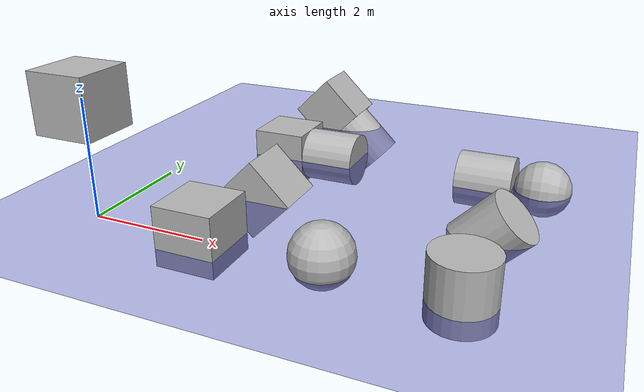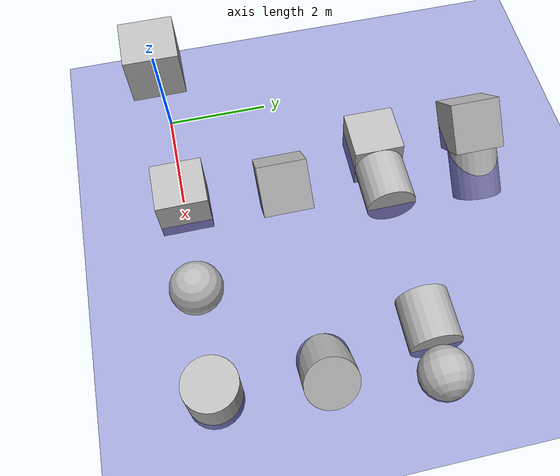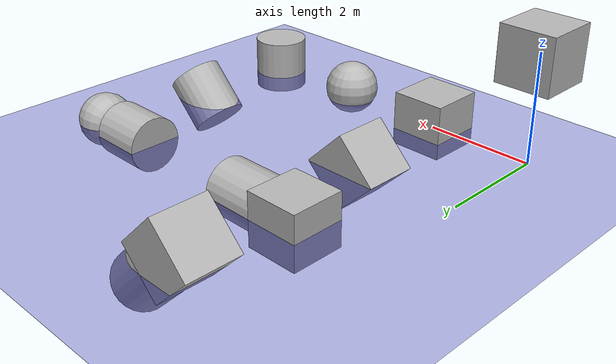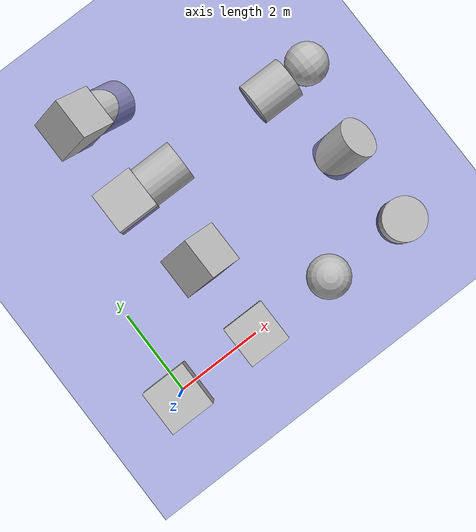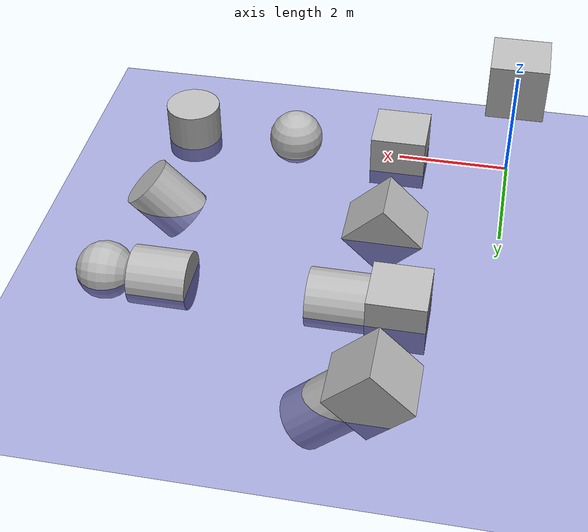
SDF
<?xml version="1.0" ?>
<!-- World containing buoyancy test models -->
<sdf version="1.6" xmlns:xacro="http://ros.org/wiki/xacro">
  <world name='buoyancy_test'>
    <gravity>0 0 0</gravity>
    <scene>
      <grid>false</grid>
      <origin_visual>false</origin_visual>
      <ambient>0.6 0.6 0.6 1</ambient>
      <background>0.8 0.8 0.8 1</background>
    </scene>

    <!-- A global light source -->
    <include>
      <uri>model://sun</uri>
    </include>

    <gui fullscreen='0'>
      <camera name='user_camera'>
        <pose frame=''>4.84693 -4.51466 1.77033 0 0.275643 2.35619</pose>
        <view_controller>orbit</view_controller>
      </camera>
    </gui>

    <!-- water level for visual reference at z = 0-->
    <model name="plane">
      <static>true</static>
      <pose>3 3 0 0 0 0</pose>
      <link name="link">
        <visual name="visual">
          <geometry>
            <plane>
              <normal>0 0 1</normal>
              <size>10 10</size>
            </plane>
          </geometry>
          <material>
            <ambient>0.0 0.0 0.6 1</ambient>
          </material>
        </visual>
      </link>
    </model>

    <!-- test_1: floating box -->
    <model name="1_box">
      <pose>0 0 2 0 0 0</pose>
      <static>true</static>
      <link name="link">
        <visual name="visual">
          <geometry>
            <box>
              <size>1 1 1</size>
            </box>
          </geometry>
        </visual>
      </link>
    </model>

    <!-- test_2: simple objects -->
    <model name="2_box">
      <pose>2 0 0.2 0 0 0</pose>
      <static>true</static>
      <link name="link">
        <visual name="visual">
          <geometry>
            <box>
              <size>1 1 1</size>
            </box>
          </geometry>
        </visual>
      </link>
    </model>
    <model name="2_sphere">
      <pose>4 0 0.2 0 0 0</pose>
      <static>true</static>
      <link name="link">
        <visual name="visual">
          <geometry>
            <sphere>
              <radius>0.5</radius>
            </sphere>
          </geometry>
        </visual>
      </link>
    </model>
    <model name="2_cylinder">
      <pose>6 0 0.2 0 0 0</pose>
      <static>true</static>
      <link name="link">
        <visual name="visual">
          <geometry>
            <cylinder>
              <radius>0.5</radius>
              <length>1</length>
            </cylinder>
          </geometry>
        </visual>
      </link>
    </model>

    <!-- test_3: angled simple objects -->
    <model name="3_box">
      <pose>2 2 0 0 0.78 0</pose>
      <static>true</static>
      <link name="link">
        <visual name="visual">
          <geometry>
            <box>
              <size>1 1 1</size>
            </box>
          </geometry>
        </visual>
      </link>
    </model>
    <model name="3_cylinder">
      <pose>6 2 0 0 0.78 0</pose>
      <static>true</static>
      <link name="link">
        <visual name="visual">
          <geometry>
            <cylinder>
              <radius>0.5</radius>
              <length>1</length>
            </cylinder>
          </geometry>
        </visual>
      </link>
    </model>

    <!-- test_4: complex objects -->
    <model name="4_complex_a">
      <pose>2 4 0 0 1.57 0</pose>
      <static>true</static>
      <link name="link">
        <visual name="visual_box">
          <pose>0 0 -0.5 0 0 0</pose>
          <geometry>
            <box>
              <size>1 1 1</size>
            </box>
          </geometry>
        </visual>
        <visual name="visual_cylinder">
          <pose>0 0 0.5 0 0 0</pose>
          <geometry>
            <cylinder>
              <radius>0.5</radius>
              <length>1</length>
            </cylinder>
          </geometry>
        </visual>
      </link>
    </model>
    <model name="4_complex_b">
      <pose>6 4 0 0 1.57 0</pose>
      <static>true</static>
      <link name="link">
        <visual name="visual_cylinder">
          <pose>0 0 -0.5 0 0 0</pose>
          <geometry>
            <cylinder>
              <radius>0.5</radius>
              <length>1</length>
            </cylinder>
          </geometry>
        </visual>
        <visual name="visual_sphere">
          <pose>0 0 0.5 0 0 0</pose>
          <geometry>
            <sphere>
              <radius>0.5</radius>
            </sphere>
          </geometry>
        </visual>
      </link>
    </model>

    <!-- test_5: complex object angled -->
    <model name="5_complex_a">
      <pose>2 6 0 0 2.35 0</pose>
      <static>true</static>
      <link name="link">
        <visual name="visual_box">
          <pose>0 0 -0.5 0 0 0</pose>
          <geometry>
            <box>
              <size>1 1 1</size>
            </box>
          </geometry>
        </visual>
        <visual name="visual_cylinder">
          <pose>0 0 0.5 0 0 0</pose>
          <geometry>
            <cylinder>
              <radius>0.5</radius>
              <length>1</length>
            </cylinder>
          </geometry>
        </visual>
      </link>
    </model>
  </world>
</sdf>
